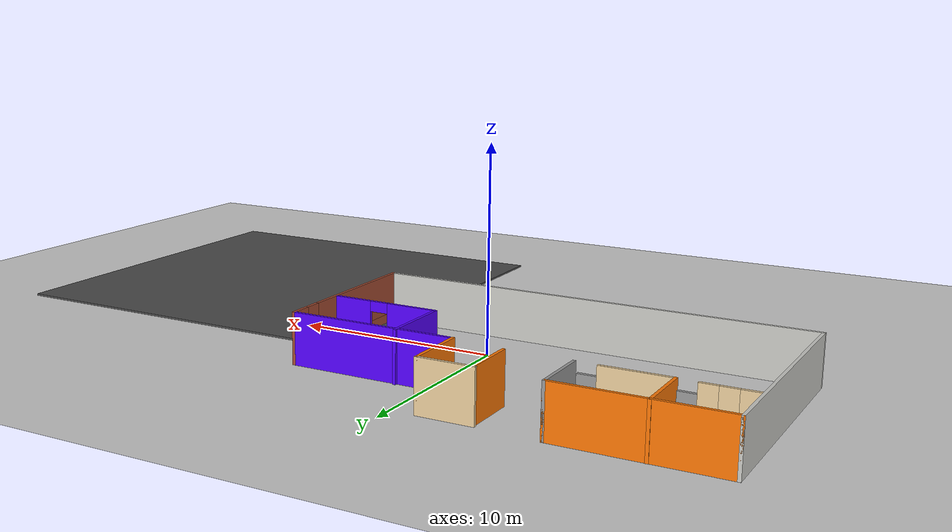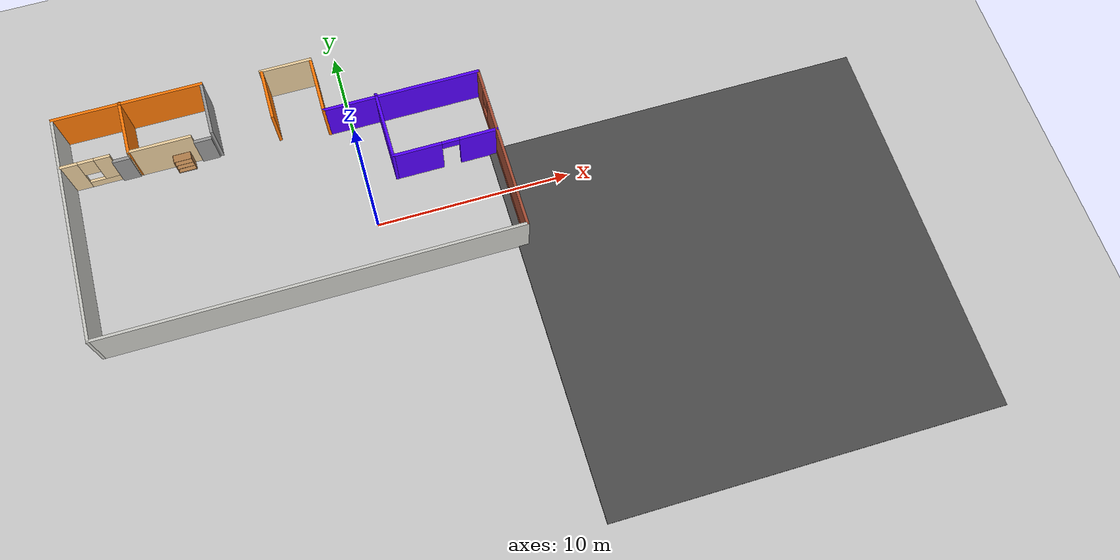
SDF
<sdf version="1.6">
 <world name="default">
  <model name="ground_plane">
   <static>1</static>
   <link name="link">
    <collision name="collision">
     <geometry><plane><normal>0 0 1</normal><size>100 100</size></plane></geometry>
     <surface>
      <contact><collide_bitmask>65535</collide_bitmask></contact>
      <friction><ode><mu>100</mu><mu2>50</mu2></ode></friction>
     </surface>
    </collision>
    <visual name="visual">
     <cast_shadows>0</cast_shadows>
     <geometry><plane><normal>0 0 1</normal><size>100 100</size></plane></geometry>
     <material>
      <script><uri>file://media/materials/scripts/gazebo.material</uri><name>Gazebo/Grey</name></script>
     </material>
    </visual>
   </link>
  </model>
  <model name="asphalt_plane">
   <static>1</static>
   <link name="link">
    <collision name="collision"><geometry><box><size>20 20 0.1</size></box></geometry></collision>
    <visual name="visual">
     <cast_shadows>0</cast_shadows>
     <geometry><box><size>20 20 0.1</size></box></geometry>
     <material>
      <script>
       <uri>model://asphalt_plane/materials/scripts</uri>
       <uri>model://asphalt_plane/materials/textures</uri>
       <name>vrc/asphalt</name>
      </script>
     </material>
    </visual>
   </link>
   <pose>16.4677 -7.52168 0 0 -0 0</pose>
  </model>
  <model name="homebuild">
   <link name="Door_0">
    <pose>-3.64915 3.13358 0 0 -0 0</pose>
    <visual name="Door_0_Visual">
     <pose>0 0 1 0 -0 0</pose>
     <geometry><box><size>0.9 0.17 2</size></box></geometry>
     <material>
      <script><uri>file://media/materials/scripts/gazebo.material</uri><name>Gazebo/Grey</name></script>
      <shader type="pixel"/>
      <ambient>0.3 0.3 0.3 1</ambient>
      <diffuse>0.7 0.7 0.7 1</diffuse>
      <specular>0.01 0.01 0.01 1</specular>
      <emissive>0 0 0 1</emissive>
     </material>
    </visual>
    <collision name="Door_0_Collision">
     <pose>0 0 1 0 -0 0</pose>
     <geometry><box><size>0.9 0.17 2</size></box></geometry>
     <surface>
      <friction>
       <ode><mu>1</mu><mu2>1</mu2><fdir1>0 0 0</fdir1><slip1>0</slip1><slip2>0</slip2></ode>
       <torsional>
        <coefficient>1</coefficient>
        <patch_radius>0</patch_radius>
        <surface_radius>0</surface_radius>
        <use_patch_radius>1</use_patch_radius>
        <ode><slip>0</slip></ode>
       </torsional>
      </friction>
      <bounce><restitution_coefficient>0</restitution_coefficient><threshold>1e+06</threshold></bounce>
      <contact>
       <collide_without_contact>0</collide_without_contact>
       <collide_without_contact_bitmask>1</collide_without_contact_bitmask>
       <collide_bitmask>1</collide_bitmask>
       <ode>
        <soft_cfm>0</soft_cfm>
        <soft_erp>0.2</soft_erp>
        <kp>1e+13</kp>
        <kd>1</kd>
        <max_vel>0.01</max_vel>
        <min_depth>0</min_depth>
       </ode>
       <bullet>
        <split_impulse>1</split_impulse>
        <split_impulse_penetration_threshold>-0.01</split_impulse_penetration_threshold>
        <soft_cfm>0</soft_cfm>
        <soft_erp>0.2</soft_erp>
        <kp>1e+13</kp>
        <kd>1</kd>
       </bullet>
      </contact>
     </surface>
    </collision>
   </link>
   <link name="Door_1">
    <pose>-7.76563 3.18607 0 0 -0 0</pose>
    <visual name="Door_1_Visual">
     <pose>0 0 1 0 -0 0</pose>
     <geometry><box><size>0.9 0.17 2</size></box></geometry>
     <material>
      <script><uri>file://media/materials/scripts/gazebo.material</uri><name>Gazebo/Grey</name></script>
      <shader type="pixel"/>
      <ambient>0.3 0.3 0.3 1</ambient>
      <diffuse>0.7 0.7 0.7 1</diffuse>
      <specular>0.01 0.01 0.01 1</specular>
      <emissive>0 0 0 1</emissive>
     </material>
    </visual>
    <collision name="Door_1_Collision">
     <pose>0 0 1 0 -0 0</pose>
     <geometry><box><size>0.9 0.17 2</size></box></geometry>
     <surface>
      <friction>
       <ode><mu>1</mu><mu2>1</mu2><fdir1>0 0 0</fdir1><slip1>0</slip1><slip2>0</slip2></ode>
       <torsional>
        <coefficient>1</coefficient>
        <patch_radius>0</patch_radius>
        <surface_radius>0</surface_radius>
        <use_patch_radius>1</use_patch_radius>
        <ode><slip>0</slip></ode>
       </torsional>
      </friction>
      <bounce><restitution_coefficient>0</restitution_coefficient><threshold>1e+06</threshold></bounce>
      <contact>
       <collide_without_contact>0</collide_without_contact>
       <collide_without_contact_bitmask>1</collide_without_contact_bitmask>
       <collide_bitmask>1</collide_bitmask>
       <ode>
        <soft_cfm>0</soft_cfm>
        <soft_erp>0.2</soft_erp>
        <kp>1e+13</kp>
        <kd>1</kd>
        <max_vel>0.01</max_vel>
        <min_depth>0</min_depth>
       </ode>
       <bullet>
        <split_impulse>1</split_impulse>
        <split_impulse_penetration_threshold>-0.01</split_impulse_penetration_threshold>
        <soft_cfm>0</soft_cfm>
        <soft_erp>0.2</soft_erp>
        <kp>1e+13</kp>
        <kd>1</kd>
       </bullet>
      </contact>
     </surface>
    </collision>
   </link>
   <link name="Wall_0">
    <pose>1.275 5.88801 0 0 -0 0</pose>
    <visual name="Wall_0_Visual">
     <pose>0 0 1.25 0 -0 0</pose>
     <geometry><box><size>2.75 0.15 2.5</size></box></geometry>
     <material>
      <script><uri>file://media/materials/scripts/gazebo.material</uri><name>Gazebo/Grey</name></script>
      <ambient>0.921569 0.807843 0.615686 1</ambient>
      <shader type="pixel"/>
      <diffuse>0.7 0.7 0.7 1</diffuse>
      <specular>0.01 0.01 0.01 1</specular>
      <emissive>0 0 0 1</emissive>
     </material>
     <meta><layer>0</layer></meta>
    </visual>
    <collision name="Wall_0_Collision">
     <pose>0 0 1.25 0 -0 0</pose>
     <geometry><box><size>2.75 0.15 2.5</size></box></geometry>
     <surface>
      <friction>
       <ode><mu>1</mu><mu2>1</mu2><fdir1>0 0 0</fdir1><slip1>0</slip1><slip2>0</slip2></ode>
       <torsional>
        <coefficient>1</coefficient>
        <patch_radius>0</patch_radius>
        <surface_radius>0</surface_radius>
        <use_patch_radius>1</use_patch_radius>
        <ode><slip>0</slip></ode>
       </torsional>
      </friction>
      <bounce><restitution_coefficient>0</restitution_coefficient><threshold>1e+06</threshold></bounce>
      <contact>
       <collide_without_contact>0</collide_without_contact>
       <collide_without_contact_bitmask>1</collide_without_contact_bitmask>
       <collide_bitmask>1</collide_bitmask>
       <ode>
        <soft_cfm>0</soft_cfm>
        <soft_erp>0.2</soft_erp>
        <kp>1e+13</kp>
        <kd>1</kd>
        <max_vel>0.01</max_vel>
        <min_depth>0</min_depth>
       </ode>
       <bullet>
        <split_impulse>1</split_impulse>
        <split_impulse_penetration_threshold>-0.01</split_impulse_penetration_threshold>
        <soft_cfm>0</soft_cfm>
        <soft_erp>0.2</soft_erp>
        <kp>1e+13</kp>
        <kd>1</kd>
       </bullet>
      </contact>
     </surface>
    </collision>
   </link>
   <link name="Wall_1">
    <pose>2.575 4.33801 0 0 0 -1.5708</pose>
    <visual name="Wall_1_Visual">
     <pose>0 0 1.25 0 -0 0</pose>
     <geometry><box><size>3.25 0.15 2.5</size></box></geometry>
     <material>
      <script><uri>file://media/materials/scripts/gazebo.material</uri><name>Gazebo/Grey</name></script>
      <ambient>0.996078 0.47451 0.0196078 1</ambient>
      <shader type="pixel"/>
      <diffuse>0.7 0.7 0.7 1</diffuse>
      <specular>0.01 0.01 0.01 1</specular>
      <emissive>0 0 0 1</emissive>
     </material>
     <meta><layer>0</layer></meta>
    </visual>
    <collision name="Wall_1_Collision">
     <pose>0 0 1.25 0 -0 0</pose>
     <geometry><box><size>3.25 0.15 2.5</size></box></geometry>
     <surface>
      <friction>
       <ode><mu>1</mu><mu2>1</mu2><fdir1>0 0 0</fdir1><slip1>0</slip1><slip2>0</slip2></ode>
       <torsional>
        <coefficient>1</coefficient>
        <patch_radius>0</patch_radius>
        <surface_radius>0</surface_radius>
        <use_patch_radius>1</use_patch_radius>
        <ode><slip>0</slip></ode>
       </torsional>
      </friction>
      <bounce><restitution_coefficient>0</restitution_coefficient><threshold>1e+06</threshold></bounce>
      <contact>
       <collide_without_contact>0</collide_without_contact>
       <collide_without_contact_bitmask>1</collide_without_contact_bitmask>
       <collide_bitmask>1</collide_bitmask>
       <ode>
        <soft_cfm>0</soft_cfm>
        <soft_erp>0.2</soft_erp>
        <kp>1e+13</kp>
        <kd>1</kd>
        <max_vel>0.01</max_vel>
        <min_depth>0</min_depth>
       </ode>
       <bullet>
        <split_impulse>1</split_impulse>
        <split_impulse_penetration_threshold>-0.01</split_impulse_penetration_threshold>
        <soft_cfm>0</soft_cfm>
        <soft_erp>0.2</soft_erp>
        <kp>1e+13</kp>
        <kd>1</kd>
       </bullet>
      </contact>
     </surface>
    </collision>
   </link>
   <link name="Wall_12">
    <pose>-7.25812 4.63699 0 0 0 -1.5708</pose>
    <visual name="Wall_12_Visual">
     <pose>0 0 1.25 0 -0 0</pose>
     <geometry><box><size>3 0.15 2.5</size></box></geometry>
     <material>
      <script><uri>file://media/materials/scripts/gazebo.material</uri><name>Gazebo/Grey</name></script>
      <ambient>0.996078 0.47451 0.0196078 1</ambient>
      <shader type="pixel"/>
      <diffuse>0.7 0.7 0.7 1</diffuse>
      <specular>0.01 0.01 0.01 1</specular>
      <emissive>0 0 0 1</emissive>
     </material>
     <meta><layer>0</layer></meta>
    </visual>
    <collision name="Wall_12_Collision">
     <pose>0 0 1.25 0 -0 0</pose>
     <geometry><box><size>3 0.15 2.5</size></box></geometry>
     <surface>
      <friction>
       <ode><mu>1</mu><mu2>1</mu2><fdir1>0 0 0</fdir1><slip1>0</slip1><slip2>0</slip2></ode>
       <torsional>
        <coefficient>1</coefficient>
        <patch_radius>0</patch_radius>
        <surface_radius>0</surface_radius>
        <use_patch_radius>1</use_patch_radius>
        <ode><slip>0</slip></ode>
       </torsional>
      </friction>
      <bounce><restitution_coefficient>0</restitution_coefficient><threshold>1e+06</threshold></bounce>
      <contact>
       <collide_without_contact>0</collide_without_contact>
       <collide_without_contact_bitmask>1</collide_without_contact_bitmask>
       <collide_bitmask>1</collide_bitmask>
       <ode>
        <soft_cfm>0</soft_cfm>
        <soft_erp>0.2</soft_erp>
        <kp>1e+13</kp>
        <kd>1</kd>
        <max_vel>0.01</max_vel>
        <min_depth>0</min_depth>
       </ode>
       <bullet>
        <split_impulse>1</split_impulse>
        <split_impulse_penetration_threshold>-0.01</split_impulse_penetration_threshold>
        <soft_cfm>0</soft_cfm>
        <soft_erp>0.2</soft_erp>
        <kp>1e+13</kp>
        <kd>1</kd>
       </bullet>
      </contact>
     </surface>
    </collision>
   </link>
   <link name="Wall_13">
    <pose>-5.70812 3.21199 0 0 -0 0</pose>
    <visual name="Wall_13_Visual">
     <pose>0 0 1.25 0 -0 0</pose>
     <geometry><box><size>3.25 0.15 2.5</size></box></geometry>
     <material>
      <script><uri>file://media/materials/scripts/gazebo.material</uri><name>Gazebo/Grey</name></script>
      <ambient>0.921569 0.807843 0.615686 1</ambient>
      <shader type="pixel"/>
      <diffuse>0.7 0.7 0.7 1</diffuse>
      <specular>0.01 0.01 0.01 1</specular>
      <emissive>0 0 0 1</emissive>
     </material>
     <meta><layer>0</layer></meta>
    </visual>
    <collision name="Wall_13_Collision">
     <pose>0 0 1.25 0 -0 0</pose>
     <geometry><box><size>3.25 0.15 2.5</size></box></geometry>
     <surface>
      <friction>
       <ode><mu>1</mu><mu2>1</mu2><fdir1>0 0 0</fdir1><slip1>0</slip1><slip2>0</slip2></ode>
       <torsional>
        <coefficient>1</coefficient>
        <patch_radius>0</patch_radius>
        <surface_radius>0</surface_radius>
        <use_patch_radius>1</use_patch_radius>
        <ode><slip>0</slip></ode>
       </torsional>
      </friction>
      <bounce><restitution_coefficient>0</restitution_coefficient><threshold>1e+06</threshold></bounce>
      <contact>
       <collide_without_contact>0</collide_without_contact>
       <collide_without_contact_bitmask>1</collide_without_contact_bitmask>
       <collide_bitmask>1</collide_bitmask>
       <ode>
        <soft_cfm>0</soft_cfm>
        <soft_erp>0.2</soft_erp>
        <kp>1e+13</kp>
        <kd>1</kd>
        <max_vel>0.01</max_vel>
        <min_depth>0</min_depth>
       </ode>
       <bullet>
        <split_impulse>1</split_impulse>
        <split_impulse_penetration_threshold>-0.01</split_impulse_penetration_threshold>
        <soft_cfm>0</soft_cfm>
        <soft_erp>0.2</soft_erp>
        <kp>1e+13</kp>
        <kd>1</kd>
       </bullet>
      </contact>
     </surface>
    </collision>
   </link>
   <link name="Wall_15">
    <pose>-9.41016 3.27066 0 0 -0 0</pose>
    <visual name="Wall_15_Visual_0">
     <pose>-0.806301 0 1.25 0 -0 0</pose>
     <geometry><box><size>0.887397 0.15 2.5</size></box></geometry>
     <material>
      <script><uri>file://media/materials/scripts/gazebo.material</uri><name>Gazebo/Grey</name></script>
      <ambient>0.921569 0.807843 0.615686 1</ambient>
      <shader type="pixel"/>
      <diffuse>0.7 0.7 0.7 1</diffuse>
      <specular>0.01 0.01 0.01 1</specular>
      <emissive>0 0 0 1</emissive>
     </material>
     <meta><layer>0</layer></meta>
    </visual>
    <visual name="Wall_15_Visual_1">
     <pose>0.443699 0 0.25 0 -0 0</pose>
     <geometry><box><size>1.6126 0.15 0.5</size></box></geometry>
     <material>
      <script><uri>file://media/materials/scripts/gazebo.material</uri><name>Gazebo/Grey</name></script>
      <ambient>0.921569 0.807843 0.615686 1</ambient>
      <shader type="pixel"/>
      <diffuse>0.7 0.7 0.7 1</diffuse>
      <specular>0.01 0.01 0.01 1</specular>
      <emissive>0 0 0 1</emissive>
     </material>
     <meta><layer>0</layer></meta>
    </visual>
    <visual name="Wall_15_Visual_2">
     <pose>0.843699 0 1.5 0 -0 0</pose>
     <geometry><box><size>0.812603 0.15 2</size></box></geometry>
     <material>
      <script><uri>file://media/materials/scripts/gazebo.material</uri><name>Gazebo/Grey</name></script>
      <ambient>0.921569 0.807843 0.615686 1</ambient>
      <shader type="pixel"/>
      <diffuse>0.7 0.7 0.7 1</diffuse>
      <specular>0.01 0.01 0.01 1</specular>
      <emissive>0 0 0 1</emissive>
     </material>
     <meta><layer>0</layer></meta>
    </visual>
    <visual name="Wall_15_Visual_3">
     <pose>0.037397 0 1.9 0 -0 0</pose>
     <geometry><box><size>0.8 0.15 1.2</size></box></geometry>
     <material>
      <script><uri>file://media/materials/scripts/gazebo.material</uri><name>Gazebo/Grey</name></script>
      <ambient>0.921569 0.807843 0.615686 1</ambient>
      <shader type="pixel"/>
      <diffuse>0.7 0.7 0.7 1</diffuse>
      <specular>0.01 0.01 0.01 1</specular>
      <emissive>0 0 0 1</emissive>
     </material>
     <meta><layer>0</layer></meta>
    </visual>
    <collision name="Wall_15_Collision_0">
     <pose>-0.806301 0 1.25 0 -0 0</pose>
     <geometry><box><size>0.887397 0.15 2.5</size></box></geometry>
     <surface>
      <friction>
       <ode><mu>1</mu><mu2>1</mu2><fdir1>0 0 0</fdir1><slip1>0</slip1><slip2>0</slip2></ode>
       <torsional>
        <coefficient>1</coefficient>
        <patch_radius>0</patch_radius>
        <surface_radius>0</surface_radius>
        <use_patch_radius>1</use_patch_radius>
        <ode><slip>0</slip></ode>
       </torsional>
      </friction>
      <bounce><restitution_coefficient>0</restitution_coefficient><threshold>1e+06</threshold></bounce>
      <contact>
       <collide_without_contact>0</collide_without_contact>
       <collide_without_contact_bitmask>1</collide_without_contact_bitmask>
       <collide_bitmask>1</collide_bitmask>
       <ode>
        <soft_cfm>0</soft_cfm>
        <soft_erp>0.2</soft_erp>
        <kp>1e+13</kp>
        <kd>1</kd>
        <max_vel>0.01</max_vel>
        <min_depth>0</min_depth>
       </ode>
       <bullet>
        <split_impulse>1</split_impulse>
        <split_impulse_penetration_threshold>-0.01</split_impulse_penetration_threshold>
        <soft_cfm>0</soft_cfm>
        <soft_erp>0.2</soft_erp>
        <kp>1e+13</kp>
        <kd>1</kd>
       </bullet>
      </contact>
     </surface>
    </collision>
    <collision name="Wall_15_Collision_1">
     <pose>0.443699 0 0.25 0 -0 0</pose>
     <geometry><box><size>1.6126 0.15 0.5</size></box></geometry>
     <surface>
      <friction>
       <ode><mu>1</mu><mu2>1</mu2><fdir1>0 0 0</fdir1><slip1>0</slip1><slip2>0</slip2></ode>
       <torsional>
        <coefficient>1</coefficient>
        <patch_radius>0</patch_radius>
        <surface_radius>0</surface_radius>
        <use_patch_radius>1</use_patch_radius>
        <ode><slip>0</slip></ode>
       </torsional>
      </friction>
      <bounce><restitution_coefficient>0</restitution_coefficient><threshold>1e+06</threshold></bounce>
      <contact>
       <collide_without_contact>0</collide_without_contact>
       <collide_without_contact_bitmask>1</collide_without_contact_bitmask>
       <collide_bitmask>1</collide_bitmask>
       <ode>
        <soft_cfm>0</soft_cfm>
        <soft_erp>0.2</soft_erp>
        <kp>1e+13</kp>
        <kd>1</kd>
        <max_vel>0.01</max_vel>
        <min_depth>0</min_depth>
       </ode>
       <bullet>
        <split_impulse>1</split_impulse>
        <split_impulse_penetration_threshold>-0.01</split_impulse_penetration_threshold>
        <soft_cfm>0</soft_cfm>
        <soft_erp>0.2</soft_erp>
        <kp>1e+13</kp>
        <kd>1</kd>
       </bullet>
      </contact>
     </surface>
    </collision>
    <collision name="Wall_15_Collision_2">
     <pose>0.843699 0 1.5 0 -0 0</pose>
     <geometry><box><size>0.812603 0.15 2</size></box></geometry>
     <surface>
      <friction>
       <ode><mu>1</mu><mu2>1</mu2><fdir1>0 0 0</fdir1><slip1>0</slip1><slip2>0</slip2></ode>
       <torsional>
        <coefficient>1</coefficient>
        <patch_radius>0</patch_radius>
        <surface_radius>0</surface_radius>
        <use_patch_radius>1</use_patch_radius>
        <ode><slip>0</slip></ode>
       </torsional>
      </friction>
      <bounce><restitution_coefficient>0</restitution_coefficient><threshold>1e+06</threshold></bounce>
      <contact>
       <collide_without_contact>0</collide_without_contact>
       <collide_without_contact_bitmask>1</collide_without_contact_bitmask>
       <collide_bitmask>1</collide_bitmask>
       <ode>
        <soft_cfm>0</soft_cfm>
        <soft_erp>0.2</soft_erp>
        <kp>1e+13</kp>
        <kd>1</kd>
        <max_vel>0.01</max_vel>
        <min_depth>0</min_depth>
       </ode>
       <bullet>
        <split_impulse>1</split_impulse>
        <split_impulse_penetration_threshold>-0.01</split_impulse_penetration_threshold>
        <soft_cfm>0</soft_cfm>
        <soft_erp>0.2</soft_erp>
        <kp>1e+13</kp>
        <kd>1</kd>
       </bullet>
      </contact>
     </surface>
    </collision>
    <collision name="Wall_15_Collision_3">
     <pose>0.037397 0 1.9 0 -0 0</pose>
     <geometry><box><size>0.8 0.15 1.2</size></box></geometry>
     <surface>
      <friction>
       <ode><mu>1</mu><mu2>1</mu2><fdir1>0 0 0</fdir1><slip1>0</slip1><slip2>0</slip2></ode>
       <torsional>
        <coefficient>1</coefficient>
        <patch_radius>0</patch_radius>
        <surface_radius>0</surface_radius>
        <use_patch_radius>1</use_patch_radius>
        <ode><slip>0</slip></ode>
       </torsional>
      </friction>
      <bounce><restitution_coefficient>0</restitution_coefficient><threshold>1e+06</threshold></bounce>
      <contact>
       <collide_without_contact>0</collide_without_contact>
       <collide_without_contact_bitmask>1</collide_without_contact_bitmask>
       <collide_bitmask>1</collide_bitmask>
       <ode>
        <soft_cfm>0</soft_cfm>
        <soft_erp>0.2</soft_erp>
        <kp>1e+13</kp>
        <kd>1</kd>
        <max_vel>0.01</max_vel>
        <min_depth>0</min_depth>
       </ode>
       <bullet>
        <split_impulse>1</split_impulse>
        <split_impulse_penetration_threshold>-0.01</split_impulse_penetration_threshold>
        <soft_cfm>0</soft_cfm>
        <soft_erp>0.2</soft_erp>
        <kp>1e+13</kp>
        <kd>1</kd>
       </bullet>
      </contact>
     </surface>
    </collision>
   </link>
   <link name="Wall_17">
    <pose>5.32096 1.1056 0 0 0 -1.5708</pose>
    <visual name="Wall_17_Visual">
     <pose>0 0 1.25 0 -0 0</pose>
     <geometry><box><size>3.75 0.15 2.5</size></box></geometry>
     <material>
      <script><uri>file://media/materials/scripts/gazebo.material</uri><name>Gazebo/Grey</name></script>
      <ambient>0.333333 0 1 1</ambient>
      <shader type="pixel"/>
      <diffuse>0.7 0.7 0.7 1</diffuse>
      <specular>0.01 0.01 0.01 1</specular>
      <emissive>0 0 0 1</emissive>
     </material>
     <meta><layer>0</layer></meta>
    </visual>
    <collision name="Wall_17_Collision">
     <pose>0 0 1.25 0 -0 0</pose>
     <geometry><box><size>3.75 0.15 2.5</size></box></geometry>
     <surface>
      <friction>
       <ode><mu>1</mu><mu2>1</mu2><fdir1>0 0 0</fdir1><slip1>0</slip1><slip2>0</slip2></ode>
       <torsional>
        <coefficient>1</coefficient>
        <patch_radius>0</patch_radius>
        <surface_radius>0</surface_radius>
        <use_patch_radius>1</use_patch_radius>
        <ode><slip>0</slip></ode>
       </torsional>
      </friction>
      <bounce><restitution_coefficient>0</restitution_coefficient><threshold>1e+06</threshold></bounce>
      <contact>
       <collide_without_contact>0</collide_without_contact>
       <collide_without_contact_bitmask>1</collide_without_contact_bitmask>
       <collide_bitmask>1</collide_bitmask>
       <ode>
        <soft_cfm>0</soft_cfm>
        <soft_erp>0.2</soft_erp>
        <kp>1e+13</kp>
        <kd>1</kd>
        <max_vel>0.01</max_vel>
        <min_depth>0</min_depth>
       </ode>
       <bullet>
        <split_impulse>1</split_impulse>
        <split_impulse_penetration_threshold>-0.01</split_impulse_penetration_threshold>
        <soft_cfm>0</soft_cfm>
        <soft_erp>0.2</soft_erp>
        <kp>1e+13</kp>
        <kd>1</kd>
       </bullet>
      </contact>
     </surface>
    </collision>
   </link>
   <link name="Wall_18">
    <pose>7.99596 -0.694395 0 0 -0 0</pose>
    <visual name="Wall_18_Visual_0">
     <pose>-1.4687 0 1.25 0 -0 0</pose>
     <geometry><box><size>2.5626 0.15 2.5</size></box></geometry>
     <material>
      <script><uri>file://media/materials/scripts/gazebo.material</uri><name>Gazebo/Grey</name></script>
      <ambient>0.333333 0 1 1</ambient>
      <shader type="pixel"/>
      <diffuse>0.7 0.7 0.7 1</diffuse>
      <specular>0.01 0.01 0.01 1</specular>
      <emissive>0 0 0 1</emissive>
     </material>
     <meta><layer>0</layer></meta>
    </visual>
    <visual name="Wall_18_Visual_1">
     <pose>1.7313 0 1.25 0 -0 0</pose>
     <geometry><box><size>2.0374 0.15 2.5</size></box></geometry>
     <material>
      <script><uri>file://media/materials/scripts/gazebo.material</uri><name>Gazebo/Grey</name></script>
      <ambient>0.333333 0 1 1</ambient>
      <shader type="pixel"/>
      <diffuse>0.7 0.7 0.7 1</diffuse>
      <specular>0.01 0.01 0.01 1</specular>
      <emissive>0 0 0 1</emissive>
     </material>
     <meta><layer>0</layer></meta>
    </visual>
    <visual name="Wall_18_Visual_2">
     <pose>0.262602 0 2.25 0 -0 0</pose>
     <geometry><box><size>0.9 0.15 0.5</size></box></geometry>
     <material>
      <script><uri>file://media/materials/scripts/gazebo.material</uri><name>Gazebo/Grey</name></script>
      <ambient>0.333333 0 1 1</ambient>
      <shader type="pixel"/>
      <diffuse>0.7 0.7 0.7 1</diffuse>
      <specular>0.01 0.01 0.01 1</specular>
      <emissive>0 0 0 1</emissive>
     </material>
     <meta><layer>0</layer></meta>
    </visual>
    <collision name="Wall_18_Collision_0">
     <pose>-1.4687 0 1.25 0 -0 0</pose>
     <geometry><box><size>2.5626 0.15 2.5</size></box></geometry>
     <surface>
      <friction>
       <ode><mu>1</mu><mu2>1</mu2><fdir1>0 0 0</fdir1><slip1>0</slip1><slip2>0</slip2></ode>
       <torsional>
        <coefficient>1</coefficient>
        <patch_radius>0</patch_radius>
        <surface_radius>0</surface_radius>
        <use_patch_radius>1</use_patch_radius>
        <ode><slip>0</slip></ode>
       </torsional>
      </friction>
      <bounce><restitution_coefficient>0</restitution_coefficient><threshold>1e+06</threshold></bounce>
      <contact>
       <collide_without_contact>0</collide_without_contact>
       <collide_without_contact_bitmask>1</collide_without_contact_bitmask>
       <collide_bitmask>1</collide_bitmask>
       <ode>
        <soft_cfm>0</soft_cfm>
        <soft_erp>0.2</soft_erp>
        <kp>1e+13</kp>
        <kd>1</kd>
        <max_vel>0.01</max_vel>
        <min_depth>0</min_depth>
       </ode>
       <bullet>
        <split_impulse>1</split_impulse>
        <split_impulse_penetration_threshold>-0.01</split_impulse_penetration_threshold>
        <soft_cfm>0</soft_cfm>
        <soft_erp>0.2</soft_erp>
        <kp>1e+13</kp>
        <kd>1</kd>
       </bullet>
      </contact>
     </surface>
    </collision>
    <collision name="Wall_18_Collision_1">
     <pose>1.7313 0 1.25 0 -0 0</pose>
     <geometry><box><size>2.0374 0.15 2.5</size></box></geometry>
     <surface>
      <friction>
       <ode><mu>1</mu><mu2>1</mu2><fdir1>0 0 0</fdir1><slip1>0</slip1><slip2>0</slip2></ode>
       <torsional>
        <coefficient>1</coefficient>
        <patch_radius>0</patch_radius>
        <surface_radius>0</surface_radius>
        <use_patch_radius>1</use_patch_radius>
        <ode><slip>0</slip></ode>
       </torsional>
      </friction>
      <bounce><restitution_coefficient>0</restitution_coefficient><threshold>1e+06</threshold></bounce>
      <contact>
       <collide_without_contact>0</collide_without_contact>
       <collide_without_contact_bitmask>1</collide_without_contact_bitmask>
       <collide_bitmask>1</collide_bitmask>
       <ode>
        <soft_cfm>0</soft_cfm>
        <soft_erp>0.2</soft_erp>
        <kp>1e+13</kp>
        <kd>1</kd>
        <max_vel>0.01</max_vel>
        <min_depth>0</min_depth>
       </ode>
       <bullet>
        <split_impulse>1</split_impulse>
        <split_impulse_penetration_threshold>-0.01</split_impulse_penetration_threshold>
        <soft_cfm>0</soft_cfm>
        <soft_erp>0.2</soft_erp>
        <kp>1e+13</kp>
        <kd>1</kd>
       </bullet>
      </contact>
     </surface>
    </collision>
    <collision name="Wall_18_Collision_2">
     <pose>0.262602 0 2.25 0 -0 0</pose>
     <geometry><box><size>0.9 0.15 0.5</size></box></geometry>
     <surface>
      <friction>
       <ode><mu>1</mu><mu2>1</mu2><fdir1>0 0 0</fdir1><slip1>0</slip1><slip2>0</slip2></ode>
       <torsional>
        <coefficient>1</coefficient>
        <patch_radius>0</patch_radius>
        <surface_radius>0</surface_radius>
        <use_patch_radius>1</use_patch_radius>
        <ode><slip>0</slip></ode>
       </torsional>
      </friction>
      <bounce><restitution_coefficient>0</restitution_coefficient><threshold>1e+06</threshold></bounce>
      <contact>
       <collide_without_contact>0</collide_without_contact>
       <collide_without_contact_bitmask>1</collide_without_contact_bitmask>
       <collide_bitmask>1</collide_bitmask>
       <ode>
        <soft_cfm>0</soft_cfm>
        <soft_erp>0.2</soft_erp>
        <kp>1e+13</kp>
        <kd>1</kd>
        <max_vel>0.01</max_vel>
        <min_depth>0</min_depth>
       </ode>
       <bullet>
        <split_impulse>1</split_impulse>
        <split_impulse_penetration_threshold>-0.01</split_impulse_penetration_threshold>
        <soft_cfm>0</soft_cfm>
        <soft_erp>0.2</soft_erp>
        <kp>1e+13</kp>
        <kd>1</kd>
       </bullet>
      </contact>
     </surface>
    </collision>
   </link>
   <link name="Wall_2">
    <pose>6.625 2.78801 0 0 -0 0</pose>
    <visual name="Wall_2_Visual">
     <pose>0 0 1.25 0 -0 0</pose>
     <geometry><box><size>8.25 0.15 2.5</size></box></geometry>
     <material>
      <script><uri>file://media/materials/scripts/gazebo.material</uri><name>Gazebo/Grey</name></script>
      <ambient>0.333333 0 1 1</ambient>
      <shader type="pixel"/>
      <diffuse>0.7 0.7 0.7 1</diffuse>
      <specular>0.01 0.01 0.01 1</specular>
      <emissive>0 0 0 1</emissive>
     </material>
     <meta><layer>0</layer></meta>
    </visual>
    <collision name="Wall_2_Collision">
     <pose>0 0 1.25 0 -0 0</pose>
     <geometry><box><size>8.25 0.15 2.5</size></box></geometry>
     <surface>
      <friction>
       <ode><mu>1</mu><mu2>1</mu2><fdir1>0 0 0</fdir1><slip1>0</slip1><slip2>0</slip2></ode>
       <torsional>
        <coefficient>1</coefficient>
        <patch_radius>0</patch_radius>
        <surface_radius>0</surface_radius>
        <use_patch_radius>1</use_patch_radius>
        <ode><slip>0</slip></ode>
       </torsional>
      </friction>
      <bounce><restitution_coefficient>0</restitution_coefficient><threshold>1e+06</threshold></bounce>
      <contact>
       <collide_without_contact>0</collide_without_contact>
       <collide_without_contact_bitmask>1</collide_without_contact_bitmask>
       <collide_bitmask>1</collide_bitmask>
       <ode>
        <soft_cfm>0</soft_cfm>
        <soft_erp>0.2</soft_erp>
        <kp>1e+13</kp>
        <kd>1</kd>
        <max_vel>0.01</max_vel>
        <min_depth>0</min_depth>
       </ode>
       <bullet>
        <split_impulse>1</split_impulse>
        <split_impulse_penetration_threshold>-0.01</split_impulse_penetration_threshold>
        <soft_cfm>0</soft_cfm>
        <soft_erp>0.2</soft_erp>
        <kp>1e+13</kp>
        <kd>1</kd>
       </bullet>
      </contact>
     </surface>
    </collision>
   </link>
   <link name="Wall_3">
    <pose>10.675 -1.63699 0 0 0 -1.5708</pose>
    <visual name="Wall_3_Visual_0">
     <pose>-3.93124 0 1.25 0 -0 0</pose>
     <geometry><box><size>1.13753 0.15 2.5</size></box></geometry>
     <material>
      <script><uri>file://media/materials/scripts/gazebo.material</uri><name>Gazebo/Bricks</name></script>
      <ambient>1 1 1 1</ambient>
      <shader type="pixel"/>
      <diffuse>1 1 1 1</diffuse>
      <specular>0.2 0.2 0.2 1</specular>
      <emissive>0 0 0 1</emissive>
     </material>
     <meta><layer>0</layer></meta>
    </visual>
    <visual name="Wall_3_Visual_1">
     <pose>0.568765 0 0.25 0 -0 0</pose>
     <geometry><box><size>7.86247 0.15 0.5</size></box></geometry>
     <material>
      <script><uri>file://media/materials/scripts/gazebo.material</uri><name>Gazebo/Bricks</name></script>
      <ambient>1 1 1 1</ambient>
      <shader type="pixel"/>
      <diffuse>1 1 1 1</diffuse>
      <specular>0.2 0.2 0.2 1</specular>
      <emissive>0 0 0 1</emissive>
     </material>
     <meta><layer>0</layer></meta>
    </visual>
    <visual name="Wall_3_Visual_2">
     <pose>0.968765 0 1.5 0 -0 0</pose>
     <geometry><box><size>7.06247 0.15 2</size></box></geometry>
     <material>
      <script><uri>file://media/materials/scripts/gazebo.material</uri><name>Gazebo/Bricks</name></script>
      <ambient>1 1 1 1</ambient>
      <shader type="pixel"/>
      <diffuse>1 1 1 1</diffuse>
      <specular>0.2 0.2 0.2 1</specular>
      <emissive>0 0 0 1</emissive>
     </material>
     <meta><layer>0</layer></meta>
    </visual>
    <visual name="Wall_3_Visual_3">
     <pose>-2.96247 0 1.9 0 -0 0</pose>
     <geometry><box><size>0.8 0.15 1.2</size></box></geometry>
     <material>
      <script><uri>file://media/materials/scripts/gazebo.material</uri><name>Gazebo/Bricks</name></script>
      <ambient>1 1 1 1</ambient>
      <shader type="pixel"/>
      <diffuse>1 1 1 1</diffuse>
      <specular>0.2 0.2 0.2 1</specular>
      <emissive>0 0 0 1</emissive>
     </material>
     <meta><layer>0</layer></meta>
    </visual>
    <collision name="Wall_3_Collision_0">
     <pose>-3.93124 0 1.25 0 -0 0</pose>
     <geometry><box><size>1.13753 0.15 2.5</size></box></geometry>
     <surface>
      <friction>
       <ode><mu>1</mu><mu2>1</mu2><fdir1>0 0 0</fdir1><slip1>0</slip1><slip2>0</slip2></ode>
       <torsional>
        <coefficient>1</coefficient>
        <patch_radius>0</patch_radius>
        <surface_radius>0</surface_radius>
        <use_patch_radius>1</use_patch_radius>
        <ode><slip>0</slip></ode>
       </torsional>
      </friction>
      <bounce><restitution_coefficient>0</restitution_coefficient><threshold>1e+06</threshold></bounce>
      <contact>
       <collide_without_contact>0</collide_without_contact>
       <collide_without_contact_bitmask>1</collide_without_contact_bitmask>
       <collide_bitmask>1</collide_bitmask>
       <ode>
        <soft_cfm>0</soft_cfm>
        <soft_erp>0.2</soft_erp>
        <kp>1e+13</kp>
        <kd>1</kd>
        <max_vel>0.01</max_vel>
        <min_depth>0</min_depth>
       </ode>
       <bullet>
        <split_impulse>1</split_impulse>
        <split_impulse_penetration_threshold>-0.01</split_impulse_penetration_threshold>
        <soft_cfm>0</soft_cfm>
        <soft_erp>0.2</soft_erp>
        <kp>1e+13</kp>
        <kd>1</kd>
       </bullet>
      </contact>
     </surface>
    </collision>
    <collision name="Wall_3_Collision_1">
     <pose>0.568765 0 0.25 0 -0 0</pose>
     <geometry><box><size>7.86247 0.15 0.5</size></box></geometry>
     <surface>
      <friction>
       <ode><mu>1</mu><mu2>1</mu2><fdir1>0 0 0</fdir1><slip1>0</slip1><slip2>0</slip2></ode>
       <torsional>
        <coefficient>1</coefficient>
        <patch_radius>0</patch_radius>
        <surface_radius>0</surface_radius>
        <use_patch_radius>1</use_patch_radius>
        <ode><slip>0</slip></ode>
       </torsional>
      </friction>
      <bounce><restitution_coefficient>0</restitution_coefficient><threshold>1e+06</threshold></bounce>
      <contact>
       <collide_without_contact>0</collide_without_contact>
       <collide_without_contact_bitmask>1</collide_without_contact_bitmask>
       <collide_bitmask>1</collide_bitmask>
       <ode>
        <soft_cfm>0</soft_cfm>
        <soft_erp>0.2</soft_erp>
        <kp>1e+13</kp>
        <kd>1</kd>
        <max_vel>0.01</max_vel>
        <min_depth>0</min_depth>
       </ode>
       <bullet>
        <split_impulse>1</split_impulse>
        <split_impulse_penetration_threshold>-0.01</split_impulse_penetration_threshold>
        <soft_cfm>0</soft_cfm>
        <soft_erp>0.2</soft_erp>
        <kp>1e+13</kp>
        <kd>1</kd>
       </bullet>
      </contact>
     </surface>
    </collision>
    <collision name="Wall_3_Collision_2">
     <pose>0.968765 0 1.5 0 -0 0</pose>
     <geometry><box><size>7.06247 0.15 2</size></box></geometry>
     <surface>
      <friction>
       <ode><mu>1</mu><mu2>1</mu2><fdir1>0 0 0</fdir1><slip1>0</slip1><slip2>0</slip2></ode>
       <torsional>
        <coefficient>1</coefficient>
        <patch_radius>0</patch_radius>
        <surface_radius>0</surface_radius>
        <use_patch_radius>1</use_patch_radius>
        <ode><slip>0</slip></ode>
       </torsional>
      </friction>
      <bounce><restitution_coefficient>0</restitution_coefficient><threshold>1e+06</threshold></bounce>
      <contact>
       <collide_without_contact>0</collide_without_contact>
       <collide_without_contact_bitmask>1</collide_without_contact_bitmask>
       <collide_bitmask>1</collide_bitmask>
       <ode>
        <soft_cfm>0</soft_cfm>
        <soft_erp>0.2</soft_erp>
        <kp>1e+13</kp>
        <kd>1</kd>
        <max_vel>0.01</max_vel>
        <min_depth>0</min_depth>
       </ode>
       <bullet>
        <split_impulse>1</split_impulse>
        <split_impulse_penetration_threshold>-0.01</split_impulse_penetration_threshold>
        <soft_cfm>0</soft_cfm>
        <soft_erp>0.2</soft_erp>
        <kp>1e+13</kp>
        <kd>1</kd>
       </bullet>
      </contact>
     </surface>
    </collision>
    <collision name="Wall_3_Collision_3">
     <pose>-2.96247 0 1.9 0 -0 0</pose>
     <geometry><box><size>0.8 0.15 1.2</size></box></geometry>
     <surface>
      <friction>
       <ode><mu>1</mu><mu2>1</mu2><fdir1>0 0 0</fdir1><slip1>0</slip1><slip2>0</slip2></ode>
       <torsional>
        <coefficient>1</coefficient>
        <patch_radius>0</patch_radius>
        <surface_radius>0</surface_radius>
        <use_patch_radius>1</use_patch_radius>
        <ode><slip>0</slip></ode>
       </torsional>
      </friction>
      <bounce><restitution_coefficient>0</restitution_coefficient><threshold>1e+06</threshold></bounce>
      <contact>
       <collide_without_contact>0</collide_without_contact>
       <collide_without_contact_bitmask>1</collide_without_contact_bitmask>
       <collide_bitmask>1</collide_bitmask>
       <ode>
        <soft_cfm>0</soft_cfm>
        <soft_erp>0.2</soft_erp>
        <kp>1e+13</kp>
        <kd>1</kd>
        <max_vel>0.01</max_vel>
        <min_depth>0</min_depth>
       </ode>
       <bullet>
        <split_impulse>1</split_impulse>
        <split_impulse_penetration_threshold>-0.01</split_impulse_penetration_threshold>
        <soft_cfm>0</soft_cfm>
        <soft_erp>0.2</soft_erp>
        <kp>1e+13</kp>
        <kd>1</kd>
       </bullet>
      </contact>
     </surface>
    </collision>
   </link>
   <link name="Wall_4">
    <pose>0 -6.06199 0 0 -0 3.14159</pose>
    <visual name="Wall_4_Visual">
     <pose>0 0 1.25 0 -0 0</pose>
     <geometry><box><size>21.5 0.15 2.5</size></box></geometry>
     <material>
      <script><uri>file://media/materials/scripts/gazebo.material</uri><name>Gazebo/CeilingTiled</name></script>
      <ambient>0.996078 0.47451 0.0196078 1</ambient>
      <shader type="pixel"/>
      <diffuse>1 1 1 1</diffuse>
      <specular>0 0 0 1</specular>
      <emissive>0 0 0 1</emissive>
     </material>
     <meta><layer>0</layer></meta>
    </visual>
    <collision name="Wall_4_Collision">
     <pose>0 0 1.25 0 -0 0</pose>
     <geometry><box><size>21.5 0.15 2.5</size></box></geometry>
     <surface>
      <friction>
       <ode><mu>1</mu><mu2>1</mu2><fdir1>0 0 0</fdir1><slip1>0</slip1><slip2>0</slip2></ode>
       <torsional>
        <coefficient>1</coefficient>
        <patch_radius>0</patch_radius>
        <surface_radius>0</surface_radius>
        <use_patch_radius>1</use_patch_radius>
        <ode><slip>0</slip></ode>
       </torsional>
      </friction>
      <bounce><restitution_coefficient>0</restitution_coefficient><threshold>1e+06</threshold></bounce>
      <contact>
       <collide_without_contact>0</collide_without_contact>
       <collide_without_contact_bitmask>1</collide_without_contact_bitmask>
       <collide_bitmask>1</collide_bitmask>
       <ode>
        <soft_cfm>0</soft_cfm>
        <soft_erp>0.2</soft_erp>
        <kp>1e+13</kp>
        <kd>1</kd>
        <max_vel>0.01</max_vel>
        <min_depth>0</min_depth>
       </ode>
       <bullet>
        <split_impulse>1</split_impulse>
        <split_impulse_penetration_threshold>-0.01</split_impulse_penetration_threshold>
        <soft_cfm>0</soft_cfm>
        <soft_erp>0.2</soft_erp>
        <kp>1e+13</kp>
        <kd>1</kd>
       </bullet>
      </contact>
     </surface>
    </collision>
   </link>
   <link name="Wall_5">
    <pose>-10.675 -0.01199 0 0 -0 1.5708</pose>
    <visual name="Wall_5_Visual">
     <pose>0 0 1.25 0 -0 0</pose>
     <geometry><box><size>12.25 0.15 2.5</size></box></geometry>
     <material>
      <script><uri>file://media/materials/scripts/gazebo.material</uri><name>Gazebo/CeilingTiled</name></script>
      <ambient>0.996078 0.47451 0.0196078 1</ambient>
      <shader type="pixel"/>
      <diffuse>1 1 1 1</diffuse>
      <specular>0 0 0 1</specular>
      <emissive>0 0 0 1</emissive>
     </material>
     <meta><layer>0</layer></meta>
    </visual>
    <collision name="Wall_5_Collision">
     <pose>0 0 1.25 0 -0 0</pose>
     <geometry><box><size>12.25 0.15 2.5</size></box></geometry>
     <surface>
      <friction>
       <ode><mu>1</mu><mu2>1</mu2><fdir1>0 0 0</fdir1><slip1>0</slip1><slip2>0</slip2></ode>
       <torsional>
        <coefficient>1</coefficient>
        <patch_radius>0</patch_radius>
        <surface_radius>0</surface_radius>
        <use_patch_radius>1</use_patch_radius>
        <ode><slip>0</slip></ode>
       </torsional>
      </friction>
      <bounce><restitution_coefficient>0</restitution_coefficient><threshold>1e+06</threshold></bounce>
      <contact>
       <collide_without_contact>0</collide_without_contact>
       <collide_without_contact_bitmask>1</collide_without_contact_bitmask>
       <collide_bitmask>1</collide_bitmask>
       <ode>
        <soft_cfm>0</soft_cfm>
        <soft_erp>0.2</soft_erp>
        <kp>1e+13</kp>
        <kd>1</kd>
        <max_vel>0.01</max_vel>
        <min_depth>0</min_depth>
       </ode>
       <bullet>
        <split_impulse>1</split_impulse>
        <split_impulse_penetration_threshold>-0.01</split_impulse_penetration_threshold>
        <soft_cfm>0</soft_cfm>
        <soft_erp>0.2</soft_erp>
        <kp>1e+13</kp>
        <kd>1</kd>
       </bullet>
      </contact>
     </surface>
    </collision>
   </link>
   <link name="Wall_6">
    <pose>-6.875 6.03801 0 0 -0 0</pose>
    <visual name="Wall_6_Visual">
     <pose>0 0 1.25 0 -0 0</pose>
     <geometry><box><size>7.75 0.15 2.5</size></box></geometry>
     <material>
      <script><uri>file://media/materials/scripts/gazebo.material</uri><name>Gazebo/Grey</name></script>
      <ambient>0.996078 0.47451 0.0196078 1</ambient>
      <shader type="pixel"/>
      <diffuse>0.7 0.7 0.7 1</diffuse>
      <specular>0.01 0.01 0.01 1</specular>
      <emissive>0 0 0 1</emissive>
     </material>
     <meta><layer>0</layer></meta>
    </visual>
    <collision name="Wall_6_Collision">
     <pose>0 0 1.25 0 -0 0</pose>
     <geometry><box><size>7.75 0.15 2.5</size></box></geometry>
     <surface>
      <friction>
       <ode><mu>1</mu><mu2>1</mu2><fdir1>0 0 0</fdir1><slip1>0</slip1><slip2>0</slip2></ode>
       <torsional>
        <coefficient>1</coefficient>
        <patch_radius>0</patch_radius>
        <surface_radius>0</surface_radius>
        <use_patch_radius>1</use_patch_radius>
        <ode><slip>0</slip></ode>
       </torsional>
      </friction>
      <bounce><restitution_coefficient>0</restitution_coefficient><threshold>1e+06</threshold></bounce>
      <contact>
       <collide_without_contact>0</collide_without_contact>
       <collide_without_contact_bitmask>1</collide_without_contact_bitmask>
       <collide_bitmask>1</collide_bitmask>
       <ode>
        <soft_cfm>0</soft_cfm>
        <soft_erp>0.2</soft_erp>
        <kp>1e+13</kp>
        <kd>1</kd>
        <max_vel>0.01</max_vel>
        <min_depth>0</min_depth>
       </ode>
       <bullet>
        <split_impulse>1</split_impulse>
        <split_impulse_penetration_threshold>-0.01</split_impulse_penetration_threshold>
        <soft_cfm>0</soft_cfm>
        <soft_erp>0.2</soft_erp>
        <kp>1e+13</kp>
        <kd>1</kd>
       </bullet>
      </contact>
     </surface>
    </collision>
   </link>
   <link name="Wall_7">
    <pose>-3.075 4.61301 0 0 0 -1.5708</pose>
    <visual name="Wall_7_Visual">
     <pose>0 0 1.25 0 -0 0</pose>
     <geometry><box><size>3 0.15 2.5</size></box></geometry>
     <material>
      <script><uri>file://media/materials/scripts/gazebo.material</uri><name>Gazebo/Grey</name></script>
      <ambient>1 1 1 1</ambient>
      <shader type="pixel"/>
      <diffuse>0.7 0.7 0.7 1</diffuse>
      <specular>0.01 0.01 0.01 1</specular>
      <emissive>0 0 0 1</emissive>
     </material>
     <meta><layer>0</layer></meta>
    </visual>
    <collision name="Wall_7_Collision">
     <pose>0 0 1.25 0 -0 0</pose>
     <geometry><box><size>3 0.15 2.5</size></box></geometry>
     <surface>
      <friction>
       <ode><mu>1</mu><mu2>1</mu2><fdir1>0 0 0</fdir1><slip1>0</slip1><slip2>0</slip2></ode>
       <torsional>
        <coefficient>1</coefficient>
        <patch_radius>0</patch_radius>
        <surface_radius>0</surface_radius>
        <use_patch_radius>1</use_patch_radius>
        <ode><slip>0</slip></ode>
       </torsional>
      </friction>
      <bounce><restitution_coefficient>0</restitution_coefficient><threshold>1e+06</threshold></bounce>
      <contact>
       <collide_without_contact>0</collide_without_contact>
       <collide_without_contact_bitmask>1</collide_without_contact_bitmask>
       <collide_bitmask>1</collide_bitmask>
       <ode>
        <soft_cfm>0</soft_cfm>
        <soft_erp>0.2</soft_erp>
        <kp>1e+13</kp>
        <kd>1</kd>
        <max_vel>0.01</max_vel>
        <min_depth>0</min_depth>
       </ode>
       <bullet>
        <split_impulse>1</split_impulse>
        <split_impulse_penetration_threshold>-0.01</split_impulse_penetration_threshold>
        <soft_cfm>0</soft_cfm>
        <soft_erp>0.2</soft_erp>
        <kp>1e+13</kp>
        <kd>1</kd>
       </bullet>
      </contact>
     </surface>
    </collision>
   </link>
   <link name="Wall_9">
    <pose>0.025 4.48801 0 0 -0 1.5708</pose>
    <visual name="Wall_9_Visual">
     <pose>0 0 1.25 0 -0 0</pose>
     <geometry><box><size>2.75 0.15 2.5</size></box></geometry>
     <material>
      <script><uri>file://media/materials/scripts/gazebo.material</uri><name>Gazebo/Grey</name></script>
      <ambient>0.996078 0.47451 0.0196078 1</ambient>
      <shader type="pixel"/>
      <diffuse>0.7 0.7 0.7 1</diffuse>
      <specular>0.01 0.01 0.01 1</specular>
      <emissive>0 0 0 1</emissive>
     </material>
     <meta><layer>0</layer></meta>
    </visual>
    <collision name="Wall_9_Collision">
     <pose>0 0 1.25 0 -0 0</pose>
     <geometry><box><size>2.75 0.15 2.5</size></box></geometry>
     <surface>
      <friction>
       <ode><mu>1</mu><mu2>1</mu2><fdir1>0 0 0</fdir1><slip1>0</slip1><slip2>0</slip2></ode>
       <torsional>
        <coefficient>1</coefficient>
        <patch_radius>0</patch_radius>
        <surface_radius>0</surface_radius>
        <use_patch_radius>1</use_patch_radius>
        <ode><slip>0</slip></ode>
       </torsional>
      </friction>
      <bounce><restitution_coefficient>0</restitution_coefficient><threshold>1e+06</threshold></bounce>
      <contact>
       <collide_without_contact>0</collide_without_contact>
       <collide_without_contact_bitmask>1</collide_without_contact_bitmask>
       <collide_bitmask>1</collide_bitmask>
       <ode>
        <soft_cfm>0</soft_cfm>
        <soft_erp>0.2</soft_erp>
        <kp>1e+13</kp>
        <kd>1</kd>
        <max_vel>0.01</max_vel>
        <min_depth>0</min_depth>
       </ode>
       <bullet>
        <split_impulse>1</split_impulse>
        <split_impulse_penetration_threshold>-0.01</split_impulse_penetration_threshold>
        <soft_cfm>0</soft_cfm>
        <soft_erp>0.2</soft_erp>
        <kp>1e+13</kp>
        <kd>1</kd>
       </bullet>
      </contact>
     </surface>
    </collision>
   </link>
   <static>1</static>
   <pose>-3.76361 2.98886 0 0 -0 0</pose>
  </model>
  <model name="bookshelf">
   <static>1</static>
   <link name="link">
    <inertial><mass>1</mass></inertial>
    <collision name="back">
     <pose>0 0.005 0.6 0 -0 0</pose>
     <geometry><box><size>0.9 0.01 1.2</size></box></geometry>
    </collision>
    <visual name="visual1">
     <pose>0 0.005 0.6 0 -0 0</pose>
     <geometry><box><size>0.9 0.01 1.2</size></box></geometry>
     <material>
      <script><uri>file://media/materials/scripts/gazebo.material</uri><name>Gazebo/Wood</name></script>
     </material>
    </visual>
    <collision name="left_side">
     <pose>0.45 -0.195 0.6 0 -0 0</pose>
     <geometry><box><size>0.02 0.4 1.2</size></box></geometry>
    </collision>
    <visual name="visual2">
     <pose>0.45 -0.195 0.6 0 -0 0</pose>
     <geometry><box><size>0.02 0.4 1.2</size></box></geometry>
     <material>
      <script><uri>file://media/materials/scripts/gazebo.material</uri><name>Gazebo/Wood</name></script>
     </material>
    </visual>
    <collision name="right_side">
     <pose>-0.45 -0.195 0.6 0 -0 0</pose>
     <geometry><box><size>0.02 0.4 1.2</size></box></geometry>
    </collision>
    <visual name="visual3">
     <pose>-0.45 -0.195 0.6 0 -0 0</pose>
     <geometry><box><size>0.02 0.4 1.2</size></box></geometry>
     <material>
      <script><uri>file://media/materials/scripts/gazebo.material</uri><name>Gazebo/Wood</name></script>
     </material>
    </visual>
    <collision name="bottom">
     <pose>0 -0.195 0.03 0 -0 0</pose>
     <geometry><box><size>0.88 0.4 0.06</size></box></geometry>
    </collision>
    <visual name="visual4">
     <pose>0 -0.195 0.03 0 -0 0</pose>
     <geometry><box><size>0.88 0.4 0.06</size></box></geometry>
     <material>
      <script><uri>file://media/materials/scripts/gazebo.material</uri><name>Gazebo/Wood</name></script>
     </material>
    </visual>
    <collision name="top">
     <pose>0 -0.195 1.19 0 -0 0</pose>
     <geometry><box><size>0.88 0.4 0.02</size></box></geometry>
    </collision>
    <visual name="visual5">
     <pose>0 -0.195 1.19 0 -0 0</pose>
     <geometry><box><size>0.88 0.4 0.02</size></box></geometry>
     <material>
      <script><uri>file://media/materials/scripts/gazebo.material</uri><name>Gazebo/Wood</name></script>
     </material>
    </visual>
    <collision name="low_shelf">
     <pose>0 -0.195 0.43 0 -0 0</pose>
     <geometry><box><size>0.88 0.4 0.02</size></box></geometry>
    </collision>
    <visual name="visual6">
     <pose>0 -0.195 0.43 0 -0 0</pose>
     <geometry><box><size>0.88 0.4 0.02</size></box></geometry>
     <material>
      <script><uri>file://media/materials/scripts/gazebo.material</uri><name>Gazebo/Wood</name></script>
     </material>
    </visual>
    <collision name="high_shelf">
     <pose>0 -0.195 0.8 0 -0 0</pose>
     <geometry><box><size>0.88 0.4 0.02</size></box></geometry>
    </collision>
    <visual name="visual7">
     <pose>0 -0.195 0.8 0 -0 0</pose>
     <geometry><box><size>0.88 0.4 0.02</size></box></geometry>
     <material>
      <script><uri>file://media/materials/scripts/gazebo.material</uri><name>Gazebo/Wood</name></script>
     </material>
    </visual>
   </link>
   <pose>-8.70021 6.10205 0 0 -0 0</pose>
  </model>
 </world>
</sdf>
